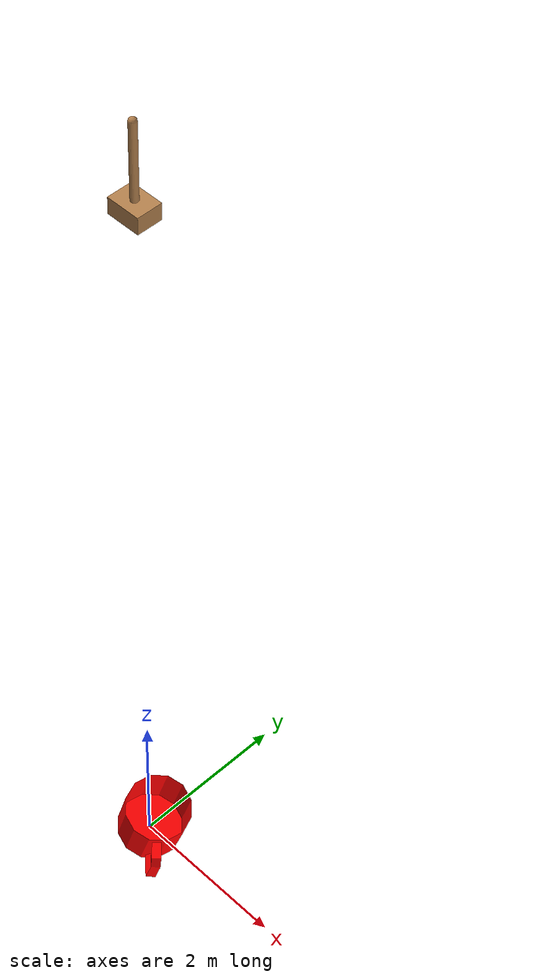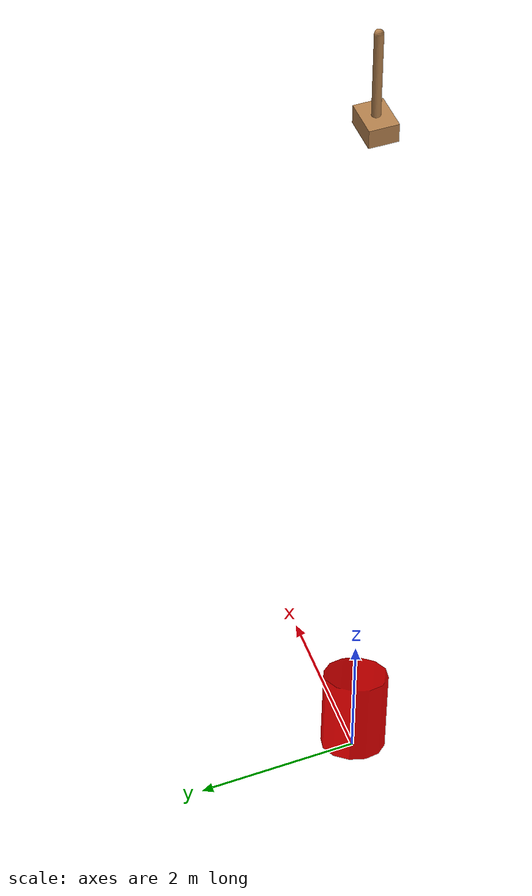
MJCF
<mujoco model="object">
  <option timestep="0.01">
    <flag eulerdamp="disable"/>
  </option>

  <visual>
    <headlight ambient=".4 .4 .4" diffuse=".8 .8 .8" specular="0.1 0.1 0.1"/>
    <map znear=".01"/>
    <quality shadowsize="2048"/>
  </visual>

  <asset>
    <material name="self" rgba=".7 .5 .3 1"/>
    <material name="red" rgba="1. 0. 0. 1"/>

    <mesh name="obj" file="./b88bcf33f25c6cb15b4f129f868dedb.obj" scale="0.25 0.25 0.25"/>
    <material name="obj_material" rgba="0.7 0.5 0.3 1" specular="0.5" shininess="0.5" reflectance=".2"/>
  </asset>

  <default>
    <default class="pole">
      <joint type="hinge" axis="0 1 0" damping="2e-6"/>
      <geom type="capsule" fromto="0 0 0 0 0 1" size="0.045" material="self" mass=".1"/>
    </default>
  </default>

  <worldbody>
    <light name="light" pos="0 0 6"/>
    <camera name="fixed" pos="0 -4 1" zaxis="0 -1 0"/>
    <camera name="lookatobject" mode="targetbody" target="object" pos="0 -0.5 0.5"/>

    <body name="cart" pos="0 0 10">
      <joint name="slider" type="slide" limited="true" axis="1 0 0" range="-1.8 1.8" solreflimit=".08 1" damping="5e-4"/>
      <geom name="cart" type="box" size="0.2 0.15 0.1" material="self" mass="1"/>
      <body name="pole_1" childclass="pole">
        <joint name="hinge_1"/>
        <geom name="pole_1"/>
      </body>
    </body>

    <body name="object" pos="0 0 0.0" euler="10 20 -45">
      <freejoint/>
      <geom type="mesh" mesh="obj" material="red"/>
    </body>
  </worldbody>

  <actuator>
    <motor name="slide" joint="slider" gear="10" ctrllimited="true" ctrlrange="-1 1" />
  </actuator>
</mujoco>
